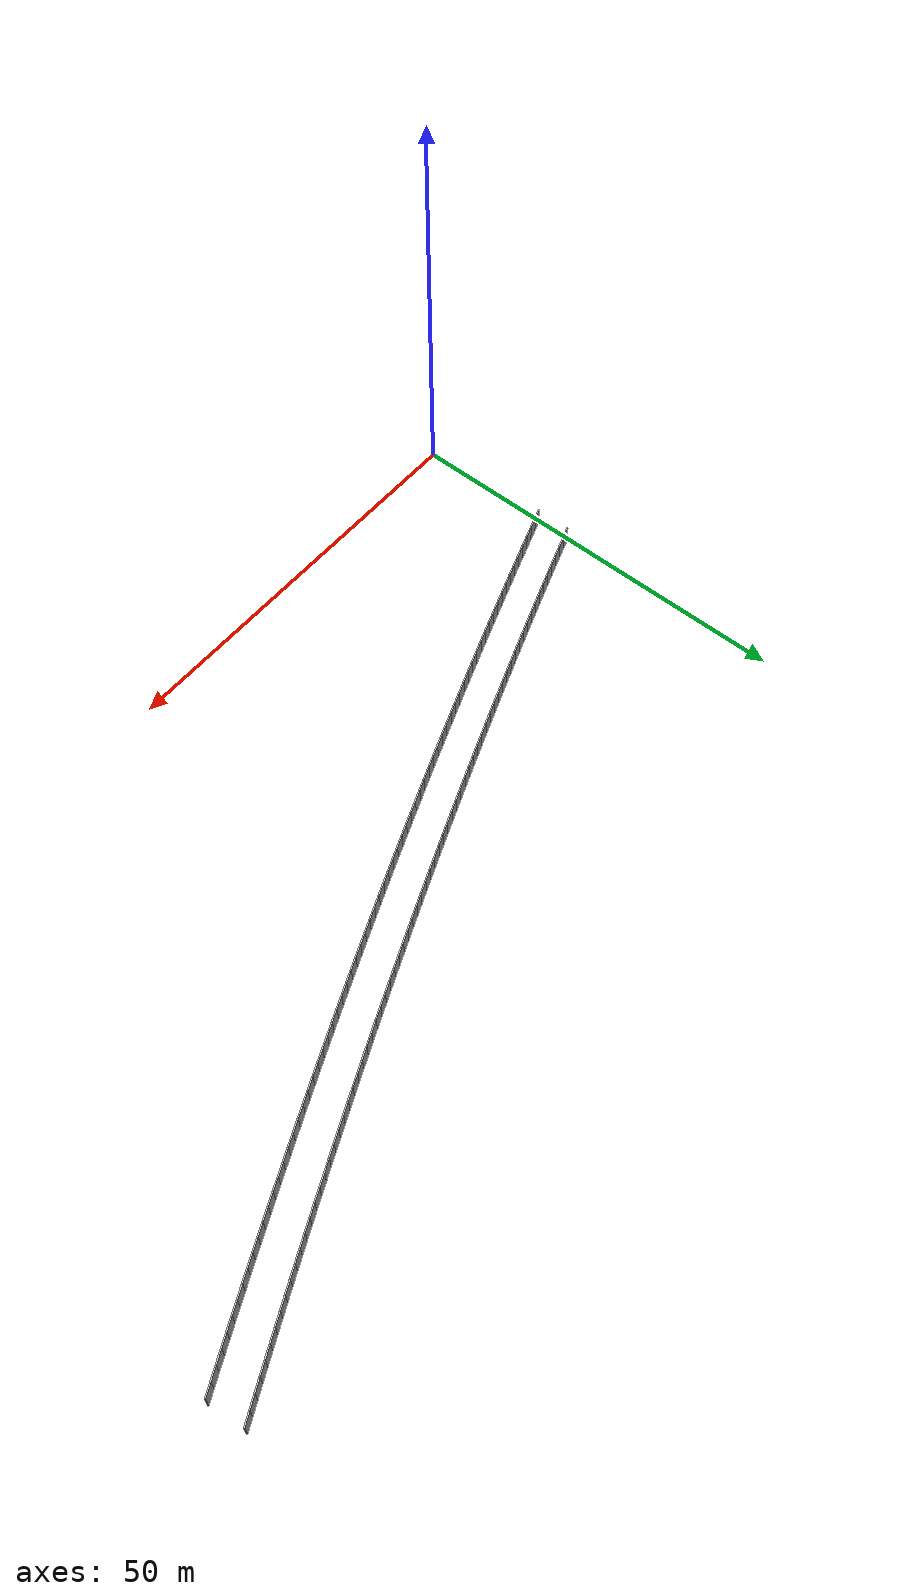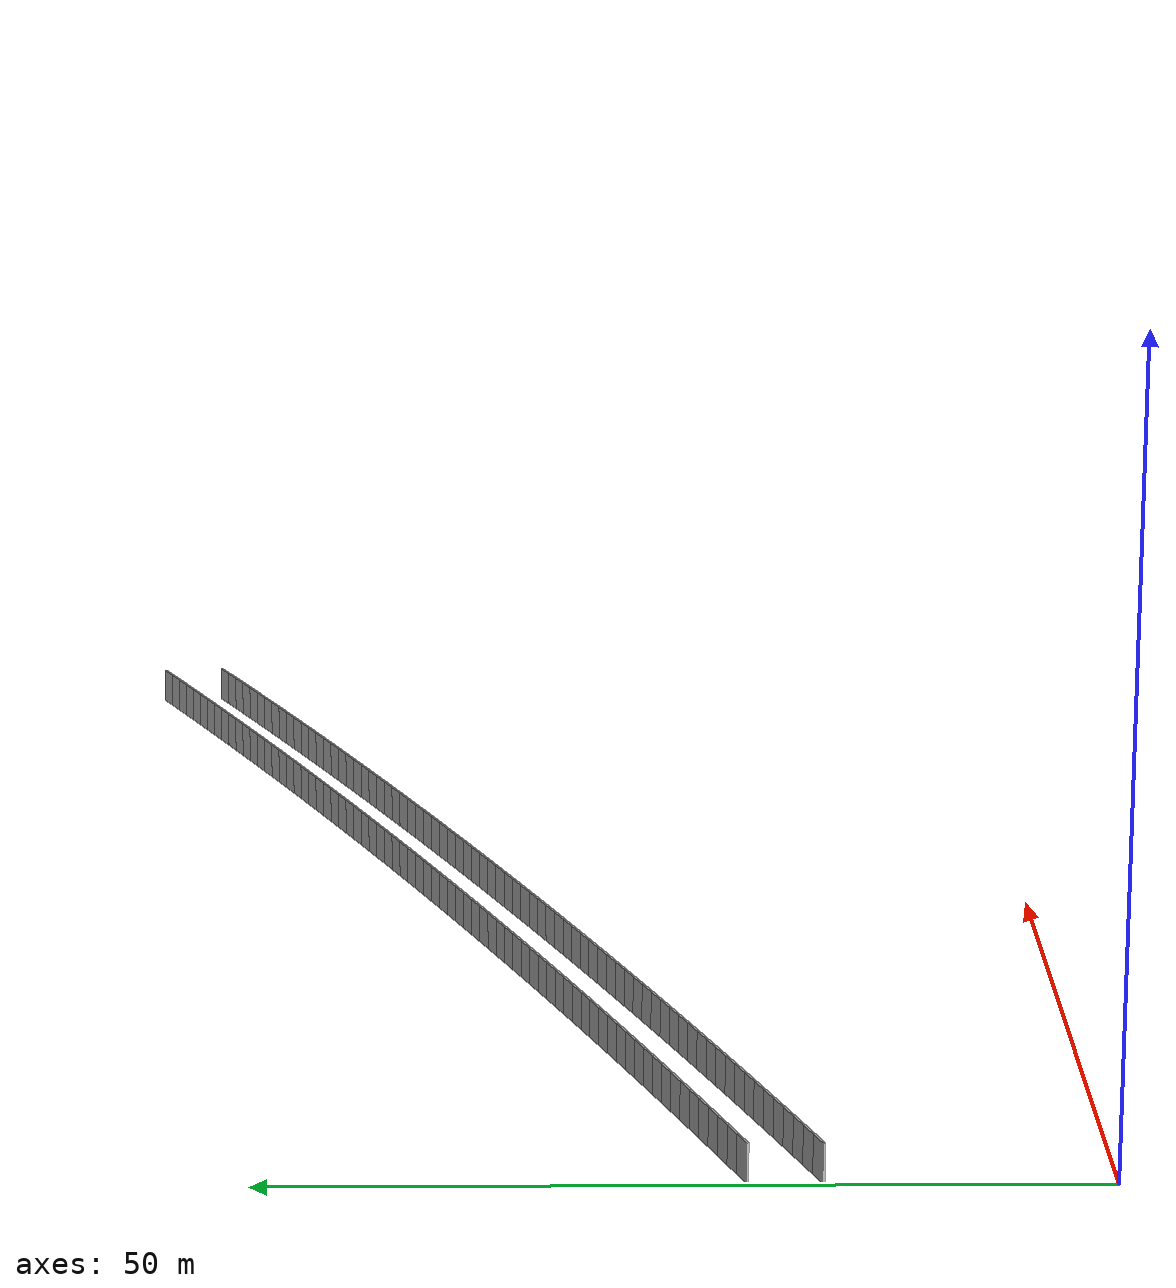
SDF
<sdf version="1.6">
 <model name="sps_1602">
  <static>1</static>
  <allow_auto_disable>0</allow_auto_disable>
  <link name="Wall3916">
   <collision name="collision"><geometry><box><size>1.49652 0.15 2.5</size></box></geometry></collision>
   <visual name="visual">
    <geometry><box><size>1.49652 0.15 2.5</size></box></geometry>
    <transparency>0.0</transparency>
   </visual>
   <pose>1.07986 21.6267 1.25 0 -0 0.335254</pose>
  </link>
  <link name="Wall3917">
   <collision name="collision"><geometry><box><size>1.49661 0.15 2.5</size></box></geometry></collision>
   <visual name="visual">
    <geometry><box><size>1.49661 0.15 2.5</size></box></geometry>
    <transparency>0.0</transparency>
   </visual>
   <pose>2.49276 22.1201 1.25 0 -0 0.336659</pose>
  </link>
  <link name="Wall3918">
   <collision name="collision"><geometry><box><size>1.49656 0.15 2.5</size></box></geometry></collision>
   <visual name="visual">
    <geometry><box><size>1.49656 0.15 2.5</size></box></geometry>
    <transparency>0.0</transparency>
   </visual>
   <pose>3.90487 22.6158 1.25 0 -0 0.33853</pose>
  </link>
  <link name="Wall3919">
   <collision name="collision"><geometry><box><size>1.49636 0.15 2.5</size></box></geometry></collision>
   <visual name="visual">
    <geometry><box><size>1.49636 0.15 2.5</size></box></geometry>
    <transparency>0.0</transparency>
   </visual>
   <pose>5.31606 23.1137 1.25 0 -0 0.339874</pose>
  </link>
  <link name="Wall3920">
   <collision name="collision"><geometry><box><size>1.49645 0.15 2.5</size></box></geometry></collision>
   <visual name="visual">
    <geometry><box><size>1.49645 0.15 2.5</size></box></geometry>
    <transparency>0.0</transparency>
   </visual>
   <pose>6.72646 23.6137 1.25 0 -0 0.341498</pose>
  </link>
  <link name="Wall3921">
   <collision name="collision"><geometry><box><size>1.49664 0.15 2.5</size></box></geometry></collision>
   <visual name="visual">
    <geometry><box><size>1.49664 0.15 2.5</size></box></geometry>
    <transparency>0.0</transparency>
   </visual>
   <pose>8.13616 24.1161 1.25 0 -0 0.343186</pose>
  </link>
  <link name="Wall3922">
   <collision name="collision"><geometry><box><size>1.49646 0.15 2.5</size></box></geometry></collision>
   <visual name="visual">
    <geometry><box><size>1.49646 0.15 2.5</size></box></geometry>
    <transparency>0.0</transparency>
   </visual>
   <pose>9.54504 24.6208 1.25 0 -0 0.344788</pose>
  </link>
  <link name="Wall3923">
   <collision name="collision"><geometry><box><size>1.49651 0.15 2.5</size></box></geometry></collision>
   <visual name="visual">
    <geometry><box><size>1.49651 0.15 2.5</size></box></geometry>
    <transparency>0.0</transparency>
   </visual>
   <pose>10.9531 25.1277 1.25 0 -0 0.346335</pose>
  </link>
  <link name="Wall3924">
   <collision name="collision"><geometry><box><size>1.49671 0.15 2.5</size></box></geometry></collision>
   <visual name="visual">
    <geometry><box><size>1.49671 0.15 2.5</size></box></geometry>
    <transparency>0.0</transparency>
   </visual>
   <pose>12.3604 25.6369 1.25 0 -0 0.348022</pose>
  </link>
  <link name="Wall3925">
   <collision name="collision"><geometry><box><size>1.4964 0.15 2.5</size></box></geometry></collision>
   <visual name="visual">
    <geometry><box><size>1.4964 0.15 2.5</size></box></geometry>
    <transparency>0.0</transparency>
   </visual>
   <pose>13.7669 26.1482 1.25 0 -0 0.349356</pose>
  </link>
  <link name="Wall3926">
   <collision name="collision"><geometry><box><size>1.49647 0.15 2.5</size></box></geometry></collision>
   <visual name="visual">
    <geometry><box><size>1.49647 0.15 2.5</size></box></geometry>
    <transparency>0.0</transparency>
   </visual>
   <pose>15.1725 26.6616 1.25 0 -0 0.351033</pose>
  </link>
  <link name="Wall3927">
   <collision name="collision"><geometry><box><size>1.49649 0.15 2.5</size></box></geometry></collision>
   <visual name="visual">
    <geometry><box><size>1.49649 0.15 2.5</size></box></geometry>
    <transparency>0.0</transparency>
   </visual>
   <pose>16.5773 27.1774 1.25 0 -0 0.352722</pose>
  </link>
  <link name="Wall3928">
   <collision name="collision"><geometry><box><size>1.49652 0.15 2.5</size></box></geometry></collision>
   <visual name="visual">
    <geometry><box><size>1.49652 0.15 2.5</size></box></geometry>
    <transparency>0.0</transparency>
   </visual>
   <pose>17.9813 27.6954 1.25 0 -0 0.354193</pose>
  </link>
  <link name="Wall3929">
   <collision name="collision"><geometry><box><size>1.49652 0.15 2.5</size></box></geometry></collision>
   <visual name="visual">
    <geometry><box><size>1.49652 0.15 2.5</size></box></geometry>
    <transparency>0.0</transparency>
   </visual>
   <pose>19.3845 28.2156 1.25 0 -0 0.355845</pose>
  </link>
  <link name="Wall3930">
   <collision name="collision"><geometry><box><size>1.49663 0.15 2.5</size></box></geometry></collision>
   <visual name="visual">
    <geometry><box><size>1.49663 0.15 2.5</size></box></geometry>
    <transparency>0.0</transparency>
   </visual>
   <pose>20.7869 28.7381 1.25 0 -0 0.357429</pose>
  </link>
  <link name="Wall3931">
   <collision name="collision"><geometry><box><size>1.4966 0.15 2.5</size></box></geometry></collision>
   <visual name="visual">
    <geometry><box><size>1.4966 0.15 2.5</size></box></geometry>
    <transparency>0.0</transparency>
   </visual>
   <pose>22.1885 29.2628 1.25 0 -0 0.359005</pose>
  </link>
  <link name="Wall3932">
   <collision name="collision"><geometry><box><size>1.49661 0.15 2.5</size></box></geometry></collision>
   <visual name="visual">
    <geometry><box><size>1.49661 0.15 2.5</size></box></geometry>
    <transparency>0.0</transparency>
   </visual>
   <pose>23.5893 29.7897 1.25 0 -0 0.360527</pose>
  </link>
  <link name="Wall3933">
   <collision name="collision"><geometry><box><size>1.49649 0.15 2.5</size></box></geometry></collision>
   <visual name="visual">
    <geometry><box><size>1.49649 0.15 2.5</size></box></geometry>
    <transparency>0.0</transparency>
   </visual>
   <pose>24.9892 30.3188 1.25 0 -0 0.362169</pose>
  </link>
  <link name="Wall3934">
   <collision name="collision"><geometry><box><size>1.49653 0.15 2.5</size></box></geometry></collision>
   <visual name="visual">
    <geometry><box><size>1.49653 0.15 2.5</size></box></geometry>
    <transparency>0.0</transparency>
   </visual>
   <pose>26.3882 30.8501 1.25 0 -0 0.36373</pose>
  </link>
  <link name="Wall3935">
   <collision name="collision"><geometry><box><size>1.49658 0.15 2.5</size></box></geometry></collision>
   <visual name="visual">
    <geometry><box><size>1.49658 0.15 2.5</size></box></geometry>
    <transparency>0.0</transparency>
   </visual>
   <pose>27.7864 31.3837 1.25 0 -0 0.36542</pose>
  </link>
  <link name="Wall3936">
   <collision name="collision"><geometry><box><size>1.49639 0.15 2.5</size></box></geometry></collision>
   <visual name="visual">
    <geometry><box><size>1.49639 0.15 2.5</size></box></geometry>
    <transparency>0.0</transparency>
   </visual>
   <pose>29.1836 31.9195 1.25 0 -0 0.36691</pose>
  </link>
  <link name="Wall3937">
   <collision name="collision"><geometry><box><size>1.4965 0.15 2.5</size></box></geometry></collision>
   <visual name="visual">
    <geometry><box><size>1.4965 0.15 2.5</size></box></geometry>
    <transparency>0.0</transparency>
   </visual>
   <pose>30.58 32.4575 1.25 0 -0 0.368585</pose>
  </link>
  <link name="Wall3938">
   <collision name="collision"><geometry><box><size>1.49649 0.15 2.5</size></box></geometry></collision>
   <visual name="visual">
    <geometry><box><size>1.49649 0.15 2.5</size></box></geometry>
    <transparency>0.0</transparency>
   </visual>
   <pose>31.9756 32.9977 1.25 0 -0 0.370032</pose>
  </link>
  <link name="Wall3939">
   <collision name="collision"><geometry><box><size>1.49657 0.15 2.5</size></box></geometry></collision>
   <visual name="visual">
    <geometry><box><size>1.49657 0.15 2.5</size></box></geometry>
    <transparency>0.0</transparency>
   </visual>
   <pose>33.3704 33.54 1.25 0 -0 0.37163</pose>
  </link>
  <link name="Wall3940">
   <collision name="collision"><geometry><box><size>1.49668 0.15 2.5</size></box></geometry></collision>
   <visual name="visual">
    <geometry><box><size>1.49668 0.15 2.5</size></box></geometry>
    <transparency>0.0</transparency>
   </visual>
   <pose>34.7645 34.0846 1.25 0 -0 0.373267</pose>
  </link>
  <link name="Wall3941">
   <collision name="collision"><geometry><box><size>1.49645 0.15 2.5</size></box></geometry></collision>
   <visual name="visual">
    <geometry><box><size>1.49645 0.15 2.5</size></box></geometry>
    <transparency>0.0</transparency>
   </visual>
   <pose>36.1576 34.6314 1.25 0 -0 0.374773</pose>
  </link>
  <link name="Wall3942">
   <collision name="collision"><geometry><box><size>1.49643 0.15 2.5</size></box></geometry></collision>
   <visual name="visual">
    <geometry><box><size>1.49643 0.15 2.5</size></box></geometry>
    <transparency>0.0</transparency>
   </visual>
   <pose>37.5496 35.1804 1.25 0 -0 0.37653</pose>
  </link>
  <link name="Wall3943">
   <collision name="collision"><geometry><box><size>1.49658 0.15 2.5</size></box></geometry></collision>
   <visual name="visual">
    <geometry><box><size>1.49658 0.15 2.5</size></box></geometry>
    <transparency>0.0</transparency>
   </visual>
   <pose>38.9409 35.7316 1.25 0 -0 0.377894</pose>
  </link>
  <link name="Wall3944">
   <collision name="collision"><geometry><box><size>1.49656 0.15 2.5</size></box></geometry></collision>
   <visual name="visual">
    <geometry><box><size>1.49656 0.15 2.5</size></box></geometry>
    <transparency>0.0</transparency>
   </visual>
   <pose>40.3314 36.285 1.25 0 -0 0.379613</pose>
  </link>
  <link name="Wall3945">
   <collision name="collision"><geometry><box><size>1.49666 0.15 2.5</size></box></geometry></collision>
   <visual name="visual">
    <geometry><box><size>1.49666 0.15 2.5</size></box></geometry>
    <transparency>0.0</transparency>
   </visual>
   <pose>41.7211 36.8407 1.25 0 -0 0.381211</pose>
  </link>
  <link name="Wall3946">
   <collision name="collision"><geometry><box><size>1.49642 0.15 2.5</size></box></geometry></collision>
   <visual name="visual">
    <geometry><box><size>1.49642 0.15 2.5</size></box></geometry>
    <transparency>0.0</transparency>
   </visual>
   <pose>43.1098 37.3985 1.25 0 -0 0.38268</pose>
  </link>
  <link name="Wall3947">
   <collision name="collision"><geometry><box><size>1.49636 0.15 2.5</size></box></geometry></collision>
   <visual name="visual">
    <geometry><box><size>1.49636 0.15 2.5</size></box></geometry>
    <transparency>0.0</transparency>
   </visual>
   <pose>44.4975 37.9584 1.25 0 -0 0.384324</pose>
  </link>
  <link name="Wall3948">
   <collision name="collision"><geometry><box><size>1.49643 0.15 2.5</size></box></geometry></collision>
   <visual name="visual">
    <geometry><box><size>1.49643 0.15 2.5</size></box></geometry>
    <transparency>0.0</transparency>
   </visual>
   <pose>45.8843 38.5205 1.25 0 -0 0.385846</pose>
  </link>
  <link name="Wall3949">
   <collision name="collision"><geometry><box><size>1.49679 0.15 2.5</size></box></geometry></collision>
   <visual name="visual">
    <geometry><box><size>1.49679 0.15 2.5</size></box></geometry>
    <transparency>0.0</transparency>
   </visual>
   <pose>47.2704 39.0849 1.25 0 -0 0.387511</pose>
  </link>
  <link name="Wall3950">
   <collision name="collision"><geometry><box><size>1.49649 0.15 2.5</size></box></geometry></collision>
   <visual name="visual">
    <geometry><box><size>1.49649 0.15 2.5</size></box></geometry>
    <transparency>0.0</transparency>
   </visual>
   <pose>48.6556 39.6516 1.25 0 -0 0.389178</pose>
  </link>
  <link name="Wall3951">
   <collision name="collision"><geometry><box><size>1.4965 0.15 2.5</size></box></geometry></collision>
   <visual name="visual">
    <geometry><box><size>1.4965 0.15 2.5</size></box></geometry>
    <transparency>0.0</transparency>
   </visual>
   <pose>50.0398 40.2204 1.25 0 -0 0.390587</pose>
  </link>
  <link name="Wall3952">
   <collision name="collision"><geometry><box><size>1.49653 0.15 2.5</size></box></geometry></collision>
   <visual name="visual">
    <geometry><box><size>1.49653 0.15 2.5</size></box></geometry>
    <transparency>0.0</transparency>
   </visual>
   <pose>51.4231 40.7914 1.25 0 -0 0.392344</pose>
  </link>
  <link name="Wall3953">
   <collision name="collision"><geometry><box><size>1.49641 0.15 2.5</size></box></geometry></collision>
   <visual name="visual">
    <geometry><box><size>1.49641 0.15 2.5</size></box></geometry>
    <transparency>0.0</transparency>
   </visual>
   <pose>52.8054 41.3647 1.25 0 -0 0.393966</pose>
  </link>
  <link name="Wall3954">
   <collision name="collision"><geometry><box><size>1.49658 0.15 2.5</size></box></geometry></collision>
   <visual name="visual">
    <geometry><box><size>1.49658 0.15 2.5</size></box></geometry>
    <transparency>0.0</transparency>
   </visual>
   <pose>54.1868 41.9402 1.25 0 -0 0.39551</pose>
  </link>
  <link name="Wall3955">
   <collision name="collision"><geometry><box><size>1.49657 0.15 2.5</size></box></geometry></collision>
   <visual name="visual">
    <geometry><box><size>1.49657 0.15 2.5</size></box></geometry>
    <transparency>0.0</transparency>
   </visual>
   <pose>55.5674 42.5178 1.25 0 -0 0.396971</pose>
  </link>
  <link name="Wall3956">
   <collision name="collision"><geometry><box><size>1.49652 0.15 2.5</size></box></geometry></collision>
   <visual name="visual">
    <geometry><box><size>1.49652 0.15 2.5</size></box></geometry>
    <transparency>0.0</transparency>
   </visual>
   <pose>56.9471 43.0975 1.25 0 -0 0.398578</pose>
  </link>
  <link name="Wall3957">
   <collision name="collision"><geometry><box><size>1.49651 0.15 2.5</size></box></geometry></collision>
   <visual name="visual">
    <geometry><box><size>1.49651 0.15 2.5</size></box></geometry>
    <transparency>0.0</transparency>
   </visual>
   <pose>58.3259 43.6793 1.25 0 -0 0.40004</pose>
  </link>
  <link name="Wall3958">
   <collision name="collision"><geometry><box><size>1.49637 0.15 2.5</size></box></geometry></collision>
   <visual name="visual">
    <geometry><box><size>1.49637 0.15 2.5</size></box></geometry>
    <transparency>0.0</transparency>
   </visual>
   <pose>59.7036 44.2633 1.25 0 -0 0.401807</pose>
  </link>
  <link name="Wall3959">
   <collision name="collision"><geometry><box><size>1.49671 0.15 2.5</size></box></geometry></collision>
   <visual name="visual">
    <geometry><box><size>1.49671 0.15 2.5</size></box></geometry>
    <transparency>0.0</transparency>
   </visual>
   <pose>61.0806 44.8496 1.25 0 -0 0.403264</pose>
  </link>
  <link name="Wall3960">
   <collision name="collision"><geometry><box><size>1.49658 0.15 2.5</size></box></geometry></collision>
   <visual name="visual">
    <geometry><box><size>1.49658 0.15 2.5</size></box></geometry>
    <transparency>0.0</transparency>
   </visual>
   <pose>62.4567 45.4381 1.25 0 -0 0.40494</pose>
  </link>
  <link name="Wall3961">
   <collision name="collision"><geometry><box><size>1.49647 0.15 2.5</size></box></geometry></collision>
   <visual name="visual">
    <geometry><box><size>1.49647 0.15 2.5</size></box></geometry>
    <transparency>0.0</transparency>
   </visual>
   <pose>63.8317 46.0288 1.25 0 -0 0.406616</pose>
  </link>
  <link name="Wall3962">
   <collision name="collision"><geometry><box><size>1.49653 0.15 2.5</size></box></geometry></collision>
   <visual name="visual">
    <geometry><box><size>1.49653 0.15 2.5</size></box></geometry>
    <transparency>0.0</transparency>
   </visual>
   <pose>65.2057 46.6217 1.25 0 -0 0.408153</pose>
  </link>
  <link name="Wall3963">
   <collision name="collision"><geometry><box><size>1.49635 0.15 2.5</size></box></geometry></collision>
   <visual name="visual">
    <geometry><box><size>1.49635 0.15 2.5</size></box></geometry>
    <transparency>0.0</transparency>
   </visual>
   <pose>66.5788 47.2167 1.25 0 -0 0.409626</pose>
  </link>
  <link name="Wall3964">
   <collision name="collision"><geometry><box><size>1.49668 0.15 2.5</size></box></geometry></collision>
   <visual name="visual">
    <geometry><box><size>1.49668 0.15 2.5</size></box></geometry>
    <transparency>0.0</transparency>
   </visual>
   <pose>67.9509 47.8139 1.25 0 -0 0.411355</pose>
  </link>
  <link name="Wall3965">
   <collision name="collision"><geometry><box><size>1.49668 0.15 2.5</size></box></geometry></collision>
   <visual name="visual">
    <geometry><box><size>1.49668 0.15 2.5</size></box></geometry>
    <transparency>0.0</transparency>
   </visual>
   <pose>69.3223 48.4133 1.25 0 -0 0.412779</pose>
  </link>
  <link name="Wall3966">
   <collision name="collision"><geometry><box><size>1.4965 0.15 2.5</size></box></geometry></collision>
   <visual name="visual">
    <geometry><box><size>1.4965 0.15 2.5</size></box></geometry>
    <transparency>0.0</transparency>
   </visual>
   <pose>70.6927 49.0148 1.25 0 -0 0.414435</pose>
  </link>
  <link name="Wall3967">
   <collision name="collision"><geometry><box><size>1.49649 0.15 2.5</size></box></geometry></collision>
   <visual name="visual">
    <geometry><box><size>1.49649 0.15 2.5</size></box></geometry>
    <transparency>0.0</transparency>
   </visual>
   <pose>72.0621 49.6185 1.25 0 -0 0.416042</pose>
  </link>
  <link name="Wall3968">
   <collision name="collision"><geometry><box><size>1.4966 0.15 2.5</size></box></geometry></collision>
   <visual name="visual">
    <geometry><box><size>1.4966 0.15 2.5</size></box></geometry>
    <transparency>0.0</transparency>
   </visual>
   <pose>73.4305 50.2244 1.25 0 -0 0.417616</pose>
  </link>
  <link name="Wall3969">
   <collision name="collision"><geometry><box><size>1.49643 0.15 2.5</size></box></geometry></collision>
   <visual name="visual">
    <geometry><box><size>1.49643 0.15 2.5</size></box></geometry>
    <transparency>0.0</transparency>
   </visual>
   <pose>74.7979 50.8325 1.25 0 -0 0.419272</pose>
  </link>
  <link name="Wall3970">
   <collision name="collision"><geometry><box><size>1.49664 0.15 2.5</size></box></geometry></collision>
   <visual name="visual">
    <geometry><box><size>1.49664 0.15 2.5</size></box></geometry>
    <transparency>0.0</transparency>
   </visual>
   <pose>76.1644 51.4427 1.25 0 -0 0.420684</pose>
  </link>
  <link name="Wall3971">
   <collision name="collision"><geometry><box><size>1.49654 0.15 2.5</size></box></geometry></collision>
   <visual name="visual">
    <geometry><box><size>1.49654 0.15 2.5</size></box></geometry>
    <transparency>0.0</transparency>
   </visual>
   <pose>77.53 52.055 1.25 0 -0 0.422324</pose>
  </link>
  <link name="Wall3972">
   <collision name="collision"><geometry><box><size>1.49651 0.15 2.5</size></box></geometry></collision>
   <visual name="visual">
    <geometry><box><size>1.49651 0.15 2.5</size></box></geometry>
    <transparency>0.0</transparency>
   </visual>
   <pose>78.8945 52.6696 1.25 0 -0 0.424076</pose>
  </link>
  <link name="Wall3973">
   <collision name="collision"><geometry><box><size>1.49651 0.15 2.5</size></box></geometry></collision>
   <visual name="visual">
    <geometry><box><size>1.49651 0.15 2.5</size></box></geometry>
    <transparency>0.0</transparency>
   </visual>
   <pose>80.258 53.2864 1.25 0 -0 0.425554</pose>
  </link>
  <link name="Wall3974">
   <collision name="collision"><geometry><box><size>1.49664 0.15 2.5</size></box></geometry></collision>
   <visual name="visual">
    <geometry><box><size>1.49664 0.15 2.5</size></box></geometry>
    <transparency>0.0</transparency>
   </visual>
   <pose>81.6206 53.9053 1.25 0 -0 0.427127</pose>
  </link>
  <link name="Wall3975">
   <collision name="collision"><geometry><box><size>1.49642 0.15 2.5</size></box></geometry></collision>
   <visual name="visual">
    <geometry><box><size>1.49642 0.15 2.5</size></box></geometry>
    <transparency>0.0</transparency>
   </visual>
   <pose>82.9822 54.5263 1.25 0 -0 0.428673</pose>
  </link>
  <link name="Wall3976">
   <collision name="collision"><geometry><box><size>1.49664 0.15 2.5</size></box></geometry></collision>
   <visual name="visual">
    <geometry><box><size>1.49664 0.15 2.5</size></box></geometry>
    <transparency>0.0</transparency>
   </visual>
   <pose>84.3428 55.1495 1.25 0 -0 0.430357</pose>
  </link>
  <link name="Wall3977">
   <collision name="collision"><geometry><box><size>1.49642 0.15 2.5</size></box></geometry></collision>
   <visual name="visual">
    <geometry><box><size>1.49642 0.15 2.5</size></box></geometry>
    <transparency>0.0</transparency>
   </visual>
   <pose>85.7024 55.7749 1.25 0 -0 0.431904</pose>
  </link>
  <link name="Wall3978">
   <collision name="collision"><geometry><box><size>1.4964 0.15 2.5</size></box></geometry></collision>
   <visual name="visual">
    <geometry><box><size>1.4964 0.15 2.5</size></box></geometry>
    <transparency>0.0</transparency>
   </visual>
   <pose>87.0608 56.4024 1.25 0 -0 0.433527</pose>
  </link>
  <link name="Wall3979">
   <collision name="collision"><geometry><box><size>1.49659 0.15 2.5</size></box></geometry></collision>
   <visual name="visual">
    <geometry><box><size>1.49659 0.15 2.5</size></box></geometry>
    <transparency>0.0</transparency>
   </visual>
   <pose>88.4184 57.032 1.25 0 -0 0.434954</pose>
  </link>
  <link name="Wall3980">
   <collision name="collision"><geometry><box><size>1.49657 0.15 2.5</size></box></geometry></collision>
   <visual name="visual">
    <geometry><box><size>1.49657 0.15 2.5</size></box></geometry>
    <transparency>0.0</transparency>
   </visual>
   <pose>89.7752 57.6637 1.25 0 -0 0.436578</pose>
  </link>
  <link name="Wall3981">
   <collision name="collision"><geometry><box><size>1.49654 0.15 2.5</size></box></geometry></collision>
   <visual name="visual">
    <geometry><box><size>1.49654 0.15 2.5</size></box></geometry>
    <transparency>0.0</transparency>
   </visual>
   <pose>91.1309 58.2976 1.25 0 -0 0.438165</pose>
  </link>
  <link name="Wall3982">
   <collision name="collision"><geometry><box><size>1.49645 0.15 2.5</size></box></geometry></collision>
   <visual name="visual">
    <geometry><box><size>1.49645 0.15 2.5</size></box></geometry>
    <transparency>0.0</transparency>
   </visual>
   <pose>92.4854 58.9337 1.25 0 -0 0.43986</pose>
  </link>
  <link name="Wall3983">
   <collision name="collision"><geometry><box><size>1.49659 0.15 2.5</size></box></geometry></collision>
   <visual name="visual">
    <geometry><box><size>1.49659 0.15 2.5</size></box></geometry>
    <transparency>0.0</transparency>
   </visual>
   <pose>93.839 59.5719 1.25 0 -0 0.441303</pose>
  </link>
  <link name="Wall3984">
   <collision name="collision"><geometry><box><size>1.49643 0.15 2.5</size></box></geometry></collision>
   <visual name="visual">
    <geometry><box><size>1.49643 0.15 2.5</size></box></geometry>
    <transparency>0.0</transparency>
   </visual>
   <pose>95.1916 60.2122 1.25 0 -0 0.44298</pose>
  </link>
  <link name="Wall3985">
   <collision name="collision"><geometry><box><size>1.49663 0.15 2.5</size></box></geometry></collision>
   <visual name="visual">
    <geometry><box><size>1.49663 0.15 2.5</size></box></geometry>
    <transparency>0.0</transparency>
   </visual>
   <pose>96.5432 60.8547 1.25 0 -0 0.444496</pose>
  </link>
  <link name="Wall3986">
   <collision name="collision"><geometry><box><size>1.49655 0.15 2.5</size></box></geometry></collision>
   <visual name="visual">
    <geometry><box><size>1.49655 0.15 2.5</size></box></geometry>
    <transparency>0.0</transparency>
   </visual>
   <pose>97.8939 61.4994 1.25 0 -0 0.446192</pose>
  </link>
  <link name="Wall3987">
   <collision name="collision"><geometry><box><size>1.49657 0.15 2.5</size></box></geometry></collision>
   <visual name="visual">
    <geometry><box><size>1.49657 0.15 2.5</size></box></geometry>
    <transparency>0.0</transparency>
   </visual>
   <pose>99.2434 62.1463 1.25 0 -0 0.447816</pose>
  </link>
  <link name="Wall7690">
   <collision name="collision"><geometry><box><size>1.50309 0.15 2.5</size></box></geometry></collision>
   <visual name="visual">
    <geometry><box><size>1.50309 0.15 2.5</size></box></geometry>
    <transparency>0.0</transparency>
   </visual>
   <pose>1.02434 17.224 1.25 0 -0 0.333603</pose>
  </link>
  <link name="Wall7691">
   <collision name="collision"><geometry><box><size>1.50307 0.15 2.5</size></box></geometry></collision>
   <visual name="visual">
    <geometry><box><size>1.50307 0.15 2.5</size></box></geometry>
    <transparency>0.0</transparency>
   </visual>
   <pose>2.44414 17.7174 1.25 0 -0 0.335285</pose>
  </link>
  <link name="Wall7692">
   <collision name="collision"><geometry><box><size>1.50312 0.15 2.5</size></box></geometry></collision>
   <visual name="visual">
    <geometry><box><size>1.50312 0.15 2.5</size></box></geometry>
    <transparency>0.0</transparency>
   </visual>
   <pose>3.86315 18.2131 1.25 0 -0 0.336865</pose>
  </link>
  <link name="Wall7693">
   <collision name="collision"><geometry><box><size>1.5032 0.15 2.5</size></box></geometry></collision>
   <visual name="visual">
    <geometry><box><size>1.5032 0.15 2.5</size></box></geometry>
    <transparency>0.0</transparency>
   </visual>
   <pose>5.28146 18.711 1.25 0 -0 0.338353</pose>
  </link>
  <link name="Wall7694">
   <collision name="collision"><geometry><box><size>1.50303 0.15 2.5</size></box></geometry></collision>
   <visual name="visual">
    <geometry><box><size>1.50303 0.15 2.5</size></box></geometry>
    <transparency>0.0</transparency>
   </visual>
   <pose>6.69894 19.2111 1.25 0 -0 0.339986</pose>
  </link>
  <link name="Wall7695">
   <collision name="collision"><geometry><box><size>1.50301 0.15 2.5</size></box></geometry></collision>
   <visual name="visual">
    <geometry><box><size>1.50301 0.15 2.5</size></box></geometry>
    <transparency>0.0</transparency>
   </visual>
   <pose>8.11553 19.7134 1.25 0 -0 0.341541</pose>
  </link>
  <link name="Wall7696">
   <collision name="collision"><geometry><box><size>1.50329 0.15 2.5</size></box></geometry></collision>
   <visual name="visual">
    <geometry><box><size>1.50329 0.15 2.5</size></box></geometry>
    <transparency>0.0</transparency>
   </visual>
   <pose>9.53146 20.218 1.25 0 -0 0.343155</pose>
  </link>
  <link name="Wall7697">
   <collision name="collision"><geometry><box><size>1.503 0.15 2.5</size></box></geometry></collision>
   <visual name="visual">
    <geometry><box><size>1.503 0.15 2.5</size></box></geometry>
    <transparency>0.0</transparency>
   </visual>
   <pose>10.9466 20.7249 1.25 0 -0 0.344778</pose>
  </link>
  <link name="Wall7698">
   <collision name="collision"><geometry><box><size>1.50306 0.15 2.5</size></box></geometry></collision>
   <visual name="visual">
    <geometry><box><size>1.50306 0.15 2.5</size></box></geometry>
    <transparency>0.0</transparency>
   </visual>
   <pose>12.3607 21.234 1.25 0 -0 0.346318</pose>
  </link>
  <link name="Wall7699">
   <collision name="collision"><geometry><box><size>1.50306 0.15 2.5</size></box></geometry></collision>
   <visual name="visual">
    <geometry><box><size>1.50306 0.15 2.5</size></box></geometry>
    <transparency>0.0</transparency>
   </visual>
   <pose>13.7742 21.7453 1.25 0 -0 0.347872</pose>
  </link>
  <link name="Wall7700">
   <collision name="collision"><geometry><box><size>1.50301 0.15 2.5</size></box></geometry></collision>
   <visual name="visual">
    <geometry><box><size>1.50301 0.15 2.5</size></box></geometry>
    <transparency>0.0</transparency>
   </visual>
   <pose>15.1868 22.2588 1.25 0 -0 0.349441</pose>
  </link>
  <link name="Wall7701">
   <collision name="collision"><geometry><box><size>1.50316 0.15 2.5</size></box></geometry></collision>
   <visual name="visual">
    <geometry><box><size>1.50316 0.15 2.5</size></box></geometry>
    <transparency>0.0</transparency>
   </visual>
   <pose>16.5986 22.7746 1.25 0 -0 0.351133</pose>
  </link>
  <link name="Wall7702">
   <collision name="collision"><geometry><box><size>1.50303 0.15 2.5</size></box></geometry></collision>
   <visual name="visual">
    <geometry><box><size>1.50303 0.15 2.5</size></box></geometry>
    <transparency>0.0</transparency>
   </visual>
   <pose>18.0096 23.2926 1.25 0 -0 0.352549</pose>
  </link>
  <link name="Wall7703">
   <collision name="collision"><geometry><box><size>1.50313 0.15 2.5</size></box></geometry></collision>
   <visual name="visual">
    <geometry><box><size>1.50313 0.15 2.5</size></box></geometry>
    <transparency>0.0</transparency>
   </visual>
   <pose>19.4198 23.8128 1.25 0 -0 0.354256</pose>
  </link>
  <link name="Wall7704">
   <collision name="collision"><geometry><box><size>1.50298 0.15 2.5</size></box></geometry></collision>
   <visual name="visual">
    <geometry><box><size>1.50298 0.15 2.5</size></box></geometry>
    <transparency>0.0</transparency>
   </visual>
   <pose>20.8291 24.3353 1.25 0 -0 0.355852</pose>
  </link>
  <link name="Wall7705">
   <collision name="collision"><geometry><box><size>1.50323 0.15 2.5</size></box></geometry></collision>
   <visual name="visual">
    <geometry><box><size>1.50323 0.15 2.5</size></box></geometry>
    <transparency>0.0</transparency>
   </visual>
   <pose>22.2376 24.8601 1.25 0 -0 0.357478</pose>
  </link>
  <link name="Wall7706">
   <collision name="collision"><geometry><box><size>1.50295 0.15 2.5</size></box></geometry></collision>
   <visual name="visual">
    <geometry><box><size>1.50295 0.15 2.5</size></box></geometry>
    <transparency>0.0</transparency>
   </visual>
   <pose>23.6453 25.3871 1.25 0 -0 0.358937</pose>
  </link>
  <link name="Wall7707">
   <collision name="collision"><geometry><box><size>1.50329 0.15 2.5</size></box></geometry></collision>
   <visual name="visual">
    <geometry><box><size>1.50329 0.15 2.5</size></box></geometry>
    <transparency>0.0</transparency>
   </visual>
   <pose>25.0521 25.9163 1.25 0 -0 0.360586</pose>
  </link>
  <link name="Wall7708">
   <collision name="collision"><geometry><box><size>1.5031 0.15 2.5</size></box></geometry></collision>
   <visual name="visual">
    <geometry><box><size>1.5031 0.15 2.5</size></box></geometry>
    <transparency>0.0</transparency>
   </visual>
   <pose>26.4582 26.4478 1.25 0 -0 0.362197</pose>
  </link>
  <link name="Wall7709">
   <collision name="collision"><geometry><box><size>1.50299 0.15 2.5</size></box></geometry></collision>
   <visual name="visual">
    <geometry><box><size>1.50299 0.15 2.5</size></box></geometry>
    <transparency>0.0</transparency>
   </visual>
   <pose>27.8633 26.9815 1.25 0 -0 0.363833</pose>
  </link>
  <link name="Wall7710">
   <collision name="collision"><geometry><box><size>1.50311 0.15 2.5</size></box></geometry></collision>
   <visual name="visual">
    <geometry><box><size>1.50311 0.15 2.5</size></box></geometry>
    <transparency>0.0</transparency>
   </visual>
   <pose>29.2676 27.5173 1.25 0 -0 0.365191</pose>
  </link>
  <link name="Wall7711">
   <collision name="collision"><geometry><box><size>1.50305 0.15 2.5</size></box></geometry></collision>
   <visual name="visual">
    <geometry><box><size>1.50305 0.15 2.5</size></box></geometry>
    <transparency>0.0</transparency>
   </visual>
   <pose>30.6711 28.0553 1.25 0 -0 0.366903</pose>
  </link>
  <link name="Wall7712">
   <collision name="collision"><geometry><box><size>1.50317 0.15 2.5</size></box></geometry></collision>
   <visual name="visual">
    <geometry><box><size>1.50317 0.15 2.5</size></box></geometry>
    <transparency>0.0</transparency>
   </visual>
   <pose>32.0738 28.5957 1.25 0 -0 0.36857</pose>
  </link>
  <link name="Wall7713">
   <collision name="collision"><geometry><box><size>1.50312 0.15 2.5</size></box></geometry></collision>
   <visual name="visual">
    <geometry><box><size>1.50312 0.15 2.5</size></box></geometry>
    <transparency>0.0</transparency>
   </visual>
   <pose>33.4755 29.1383 1.25 0 -0 0.370063</pose>
  </link>
  <link name="Wall7714">
   <collision name="collision"><geometry><box><size>1.50304 0.15 2.5</size></box></geometry></collision>
   <visual name="visual">
    <geometry><box><size>1.50304 0.15 2.5</size></box></geometry>
    <transparency>0.0</transparency>
   </visual>
   <pose>34.8765 29.683 1.25 0 -0 0.371608</pose>
  </link>
  <link name="Wall7715">
   <collision name="collision"><geometry><box><size>1.50291 0.15 2.5</size></box></geometry></collision>
   <visual name="visual">
    <geometry><box><size>1.50291 0.15 2.5</size></box></geometry>
    <transparency>0.0</transparency>
   </visual>
   <pose>36.2764 30.23 1.25 0 -0 0.373387</pose>
  </link>
  <link name="Wall7716">
   <collision name="collision"><geometry><box><size>1.50311 0.15 2.5</size></box></geometry></collision>
   <visual name="visual">
    <geometry><box><size>1.50311 0.15 2.5</size></box></geometry>
    <transparency>0.0</transparency>
   </visual>
   <pose>37.6754 30.7792 1.25 0 -0 0.37473</pose>
  </link>
  <link name="Wall7717">
   <collision name="collision"><geometry><box><size>1.5031 0.15 2.5</size></box></geometry></collision>
   <visual name="visual">
    <geometry><box><size>1.5031 0.15 2.5</size></box></geometry>
    <transparency>0.0</transparency>
   </visual>
   <pose>39.0738 31.3306 1.25 0 -0 0.37648</pose>
  </link>
  <link name="Wall7718">
   <collision name="collision"><geometry><box><size>1.50311 0.15 2.5</size></box></geometry></collision>
   <visual name="visual">
    <geometry><box><size>1.50311 0.15 2.5</size></box></geometry>
    <transparency>0.0</transparency>
   </visual>
   <pose>40.4712 31.8843 1.25 0 -0 0.378048</pose>
  </link>
  <link name="Wall7719">
   <collision name="collision"><geometry><box><size>1.50324 0.15 2.5</size></box></geometry></collision>
   <visual name="visual">
    <geometry><box><size>1.50324 0.15 2.5</size></box></geometry>
    <transparency>0.0</transparency>
   </visual>
   <pose>41.8678 32.4402 1.25 0 -0 0.379587</pose>
  </link>
  <link name="Wall7720">
   <collision name="collision"><geometry><box><size>1.5031 0.15 2.5</size></box></geometry></collision>
   <visual name="visual">
    <geometry><box><size>1.5031 0.15 2.5</size></box></geometry>
    <transparency>0.0</transparency>
   </visual>
   <pose>43.2635 32.9983 1.25 0 -0 0.3812</pose>
  </link>
  <link name="Wall7721">
   <collision name="collision"><geometry><box><size>1.50303 0.15 2.5</size></box></geometry></collision>
   <visual name="visual">
    <geometry><box><size>1.50303 0.15 2.5</size></box></geometry>
    <transparency>0.0</transparency>
   </visual>
   <pose>44.6583 33.5585 1.25 0 -0 0.382618</pose>
  </link>
  <link name="Wall7722">
   <collision name="collision"><geometry><box><size>1.5031 0.15 2.5</size></box></geometry></collision>
   <visual name="visual">
    <geometry><box><size>1.5031 0.15 2.5</size></box></geometry>
    <transparency>0.0</transparency>
   </visual>
   <pose>46.0521 34.1209 1.25 0 -0 0.384352</pose>
  </link>
  <link name="Wall7723">
   <collision name="collision"><geometry><box><size>1.50315 0.15 2.5</size></box></geometry></collision>
   <visual name="visual">
    <geometry><box><size>1.50315 0.15 2.5</size></box></geometry>
    <transparency>0.0</transparency>
   </visual>
   <pose>47.4452 34.6856 1.25 0 -0 0.385958</pose>
  </link>
  <link name="Wall7724">
   <collision name="collision"><geometry><box><size>1.50305 0.15 2.5</size></box></geometry></collision>
   <visual name="visual">
    <geometry><box><size>1.50305 0.15 2.5</size></box></geometry>
    <transparency>0.0</transparency>
   </visual>
   <pose>48.8372 35.2525 1.25 0 -0 0.387519</pose>
  </link>
  <link name="Wall7725">
   <collision name="collision"><geometry><box><size>1.50298 0.15 2.5</size></box></geometry></collision>
   <visual name="visual">
    <geometry><box><size>1.50298 0.15 2.5</size></box></geometry>
    <transparency>0.0</transparency>
   </visual>
   <pose>50.2284 35.8216 1.25 0 -0 0.389118</pose>
  </link>
  <link name="Wall7726">
   <collision name="collision"><geometry><box><size>1.50303 0.15 2.5</size></box></geometry></collision>
   <visual name="visual">
    <geometry><box><size>1.50303 0.15 2.5</size></box></geometry>
    <transparency>0.0</transparency>
   </visual>
   <pose>51.6186 36.3929 1.25 0 -0 0.390687</pose>
  </link>
  <link name="Wall7727">
   <collision name="collision"><geometry><box><size>1.50319 0.15 2.5</size></box></geometry></collision>
   <visual name="visual">
    <geometry><box><size>1.50319 0.15 2.5</size></box></geometry>
    <transparency>0.0</transparency>
   </visual>
   <pose>53.008 36.9664 1.25 0 -0 0.392224</pose>
  </link>
  <link name="Wall7728">
   <collision name="collision"><geometry><box><size>1.50309 0.15 2.5</size></box></geometry></collision>
   <visual name="visual">
    <geometry><box><size>1.50309 0.15 2.5</size></box></geometry>
    <transparency>0.0</transparency>
   </visual>
   <pose>54.3965 37.5421 1.25 0 -0 0.393876</pose>
  </link>
  <link name="Wall7729">
   <collision name="collision"><geometry><box><size>1.50296 0.15 2.5</size></box></geometry></collision>
   <visual name="visual">
    <geometry><box><size>1.50296 0.15 2.5</size></box></geometry>
    <transparency>0.0</transparency>
   </visual>
   <pose>55.784 38.12 1.25 0 -0 0.395453</pose>
  </link>
  <link name="Wall7730">
   <collision name="collision"><geometry><box><size>1.50313 0.15 2.5</size></box></geometry></collision>
   <visual name="visual">
    <geometry><box><size>1.50313 0.15 2.5</size></box></geometry>
    <transparency>0.0</transparency>
   </visual>
   <pose>57.1706 38.7001 1.25 0 -0 0.39699</pose>
  </link>
  <link name="Wall7731">
   <collision name="collision"><geometry><box><size>1.50305 0.15 2.5</size></box></geometry></collision>
   <visual name="visual">
    <geometry><box><size>1.50305 0.15 2.5</size></box></geometry>
    <transparency>0.0</transparency>
   </visual>
   <pose>58.5563 39.2824 1.25 0 -0 0.398643</pose>
  </link>
  <link name="Wall7732">
   <collision name="collision"><geometry><box><size>1.50291 0.15 2.5</size></box></geometry></collision>
   <visual name="visual">
    <geometry><box><size>1.50291 0.15 2.5</size></box></geometry>
    <transparency>0.0</transparency>
   </visual>
   <pose>59.941 39.8668 1.25 0 -0 0.400092</pose>
  </link>
  <link name="Wall7733">
   <collision name="collision"><geometry><box><size>1.50305 0.15 2.5</size></box></geometry></collision>
   <visual name="visual">
    <geometry><box><size>1.50305 0.15 2.5</size></box></geometry>
    <transparency>0.0</transparency>
   </visual>
   <pose>61.3248 40.4534 1.25 0 -0 0.401773</pose>
  </link>
  <link name="Wall7734">
   <collision name="collision"><geometry><box><size>1.50326 0.15 2.5</size></box></geometry></collision>
   <visual name="visual">
    <geometry><box><size>1.50326 0.15 2.5</size></box></geometry>
    <transparency>0.0</transparency>
   </visual>
   <pose>62.7078 41.0423 1.25 0 -0 0.403346</pose>
  </link>
  <link name="Wall7735">
   <collision name="collision"><geometry><box><size>1.50317 0.15 2.5</size></box></geometry></collision>
   <visual name="visual">
    <geometry><box><size>1.50317 0.15 2.5</size></box></geometry>
    <transparency>0.0</transparency>
   </visual>
   <pose>64.0899 41.6334 1.25 0 -0 0.404961</pose>
  </link>
  <link name="Wall7736">
   <collision name="collision"><geometry><box><size>1.50289 0.15 2.5</size></box></geometry></collision>
   <visual name="visual">
    <geometry><box><size>1.50289 0.15 2.5</size></box></geometry>
    <transparency>0.0</transparency>
   </visual>
   <pose>65.4708 42.2267 1.25 0 -0 0.406588</pose>
  </link>
  <link name="Wall7737">
   <collision name="collision"><geometry><box><size>1.50328 0.15 2.5</size></box></geometry></collision>
   <visual name="visual">
    <geometry><box><size>1.50328 0.15 2.5</size></box></geometry>
    <transparency>0.0</transparency>
   </visual>
   <pose>66.8509 42.8222 1.25 0 -0 0.408112</pose>
  </link>
  <link name="Wall7738">
   <collision name="collision"><geometry><box><size>1.50304 0.15 2.5</size></box></geometry></collision>
   <visual name="visual">
    <geometry><box><size>1.50304 0.15 2.5</size></box></geometry>
    <transparency>0.0</transparency>
   </visual>
   <pose>68.2302 43.4199 1.25 0 -0 0.409776</pose>
  </link>
  <link name="Wall7739">
   <collision name="collision"><geometry><box><size>1.50316 0.15 2.5</size></box></geometry></collision>
   <visual name="visual">
    <geometry><box><size>1.50316 0.15 2.5</size></box></geometry>
    <transparency>0.0</transparency>
   </visual>
   <pose>69.6084 44.0198 1.25 0 -0 0.41129</pose>
  </link>
  <link name="Wall7740">
   <collision name="collision"><geometry><box><size>1.50304 0.15 2.5</size></box></geometry></collision>
   <visual name="visual">
    <geometry><box><size>1.50304 0.15 2.5</size></box></geometry>
    <transparency>0.0</transparency>
   </visual>
   <pose>70.9856 44.6218 1.25 0 -0 0.412831</pose>
  </link>
  <link name="Wall7741">
   <collision name="collision"><geometry><box><size>1.50311 0.15 2.5</size></box></geometry></collision>
   <visual name="visual">
    <geometry><box><size>1.50311 0.15 2.5</size></box></geometry>
    <transparency>0.0</transparency>
   </visual>
   <pose>72.3619 45.226 1.25 0 -0 0.414543</pose>
  </link>
  <link name="Wall7742">
   <collision name="collision"><geometry><box><size>1.50302 0.15 2.5</size></box></geometry></collision>
   <visual name="visual">
    <geometry><box><size>1.50302 0.15 2.5</size></box></geometry>
    <transparency>0.0</transparency>
   </visual>
   <pose>73.7372 45.8324 1.25 0 -0 0.416031</pose>
  </link>
  <link name="Wall7743">
   <collision name="collision"><geometry><box><size>1.50316 0.15 2.5</size></box></geometry></collision>
   <visual name="visual">
    <geometry><box><size>1.50316 0.15 2.5</size></box></geometry>
    <transparency>0.0</transparency>
   </visual>
   <pose>75.1117 46.4409 1.25 0 -0 0.417544</pose>
  </link>
  <link name="Wall7744">
   <collision name="collision"><geometry><box><size>1.50306 0.15 2.5</size></box></geometry></collision>
   <visual name="visual">
    <geometry><box><size>1.50306 0.15 2.5</size></box></geometry>
    <transparency>0.0</transparency>
   </visual>
   <pose>76.4852 47.0515 1.25 0 -0 0.419086</pose>
  </link>
  <link name="Wall7745">
   <collision name="collision"><geometry><box><size>1.50311 0.15 2.5</size></box></geometry></collision>
   <visual name="visual">
    <geometry><box><size>1.50311 0.15 2.5</size></box></geometry>
    <transparency>0.0</transparency>
   </visual>
   <pose>77.8577 47.6643 1.25 0 -0 0.42076</pose>
  </link>
  <link name="Wall7746">
   <collision name="collision"><geometry><box><size>1.50309 0.15 2.5</size></box></geometry></collision>
   <visual name="visual">
    <geometry><box><size>1.50309 0.15 2.5</size></box></geometry>
    <transparency>0.0</transparency>
   </visual>
   <pose>79.2291 48.2794 1.25 0 -0 0.422413</pose>
  </link>
  <link name="Wall7747">
   <collision name="collision"><geometry><box><size>1.50303 0.15 2.5</size></box></geometry></collision>
   <visual name="visual">
    <geometry><box><size>1.50303 0.15 2.5</size></box></geometry>
    <transparency>0.0</transparency>
   </visual>
   <pose>80.5996 48.8966 1.25 0 -0 0.423902</pose>
  </link>
  <link name="Wall7748">
   <collision name="collision"><geometry><box><size>1.50312 0.15 2.5</size></box></geometry></collision>
   <visual name="visual">
    <geometry><box><size>1.50312 0.15 2.5</size></box></geometry>
    <transparency>0.0</transparency>
   </visual>
   <pose>81.9691 49.516 1.25 0 -0 0.425613</pose>
  </link>
  <link name="Wall7749">
   <collision name="collision"><geometry><box><size>1.50298 0.15 2.5</size></box></geometry></collision>
   <visual name="visual">
    <geometry><box><size>1.50298 0.15 2.5</size></box></geometry>
    <transparency>0.0</transparency>
   </visual>
   <pose>83.3376 50.1376 1.25 0 -0 0.427081</pose>
  </link>
  <link name="Wall7750">
   <collision name="collision"><geometry><box><size>1.50311 0.15 2.5</size></box></geometry></collision>
   <visual name="visual">
    <geometry><box><size>1.50311 0.15 2.5</size></box></geometry>
    <transparency>0.0</transparency>
   </visual>
   <pose>84.7051 50.7614 1.25 0 -0 0.428829</pose>
  </link>
  <link name="Wall7751">
   <collision name="collision"><geometry><box><size>1.50298 0.15 2.5</size></box></geometry></collision>
   <visual name="visual">
    <geometry><box><size>1.50298 0.15 2.5</size></box></geometry>
    <transparency>0.0</transparency>
   </visual>
   <pose>86.0716 51.3873 1.25 0 -0 0.430207</pose>
  </link>
  <link name="Wall7752">
   <collision name="collision"><geometry><box><size>1.5032 0.15 2.5</size></box></geometry></collision>
   <visual name="visual">
    <geometry><box><size>1.5032 0.15 2.5</size></box></geometry>
    <transparency>0.0</transparency>
   </visual>
   <pose>87.4372 52.0153 1.25 0 -0 0.431883</pose>
  </link>
  <link name="Wall7753">
   <collision name="collision"><geometry><box><size>1.50313 0.15 2.5</size></box></geometry></collision>
   <visual name="visual">
    <geometry><box><size>1.50313 0.15 2.5</size></box></geometry>
    <transparency>0.0</transparency>
   </visual>
   <pose>88.8019 52.6455 1.25 0 -0 0.433335</pose>
  </link>
  <link name="Wall7754">
   <collision name="collision"><geometry><box><size>1.50311 0.15 2.5</size></box></geometry></collision>
   <visual name="visual">
    <geometry><box><size>1.50311 0.15 2.5</size></box></geometry>
    <transparency>0.0</transparency>
   </visual>
   <pose>90.1655 53.2779 1.25 0 -0 0.435133</pose>
  </link>
  <link name="Wall7755">
   <collision name="collision"><geometry><box><size>1.50309 0.15 2.5</size></box></geometry></collision>
   <visual name="visual">
    <geometry><box><size>1.50309 0.15 2.5</size></box></geometry>
    <transparency>0.0</transparency>
   </visual>
   <pose>91.5281 53.9126 1.25 0 -0 0.43675</pose>
  </link>
  <link name="Wall7756">
   <collision name="collision"><geometry><box><size>1.50323 0.15 2.5</size></box></geometry></collision>
   <visual name="visual">
    <geometry><box><size>1.50323 0.15 2.5</size></box></geometry>
    <transparency>0.0</transparency>
   </visual>
   <pose>92.8897 54.5494 1.25 0 -0 0.438187</pose>
  </link>
  <link name="Wall7757">
   <collision name="collision"><geometry><box><size>1.50295 0.15 2.5</size></box></geometry></collision>
   <visual name="visual">
    <geometry><box><size>1.50295 0.15 2.5</size></box></geometry>
    <transparency>0.0</transparency>
   </visual>
   <pose>94.2503 55.1882 1.25 0 -0 0.439709</pose>
  </link>
  <link name="Wall7758">
   <collision name="collision"><geometry><box><size>1.50311 0.15 2.5</size></box></geometry></collision>
   <visual name="visual">
    <geometry><box><size>1.50311 0.15 2.5</size></box></geometry>
    <transparency>0.0</transparency>
   </visual>
   <pose>95.6098 55.8292 1.25 0 -0 0.441455</pose>
  </link>
  <link name="Wall7759">
   <collision name="collision"><geometry><box><size>1.50303 0.15 2.5</size></box></geometry></collision>
   <visual name="visual">
    <geometry><box><size>1.50303 0.15 2.5</size></box></geometry>
    <transparency>0.0</transparency>
   </visual>
   <pose>96.9683 56.4724 1.25 0 -0 0.442961</pose>
  </link>
  <link name="Wall7760">
   <collision name="collision"><geometry><box><size>1.50307 0.15 2.5</size></box></geometry></collision>
   <visual name="visual">
    <geometry><box><size>1.50307 0.15 2.5</size></box></geometry>
    <transparency>0.0</transparency>
   </visual>
   <pose>98.3257 57.1177 1.25 0 -0 0.444524</pose>
  </link>
  <link name="Wall7761">
   <collision name="collision"><geometry><box><size>1.50316 0.15 2.5</size></box></geometry></collision>
   <visual name="visual">
    <geometry><box><size>1.50316 0.15 2.5</size></box></geometry>
    <transparency>0.0</transparency>
   </visual>
   <pose>99.6822 57.7652 1.25 0 -0 0.44616</pose>
  </link>
 </model>
</sdf>
